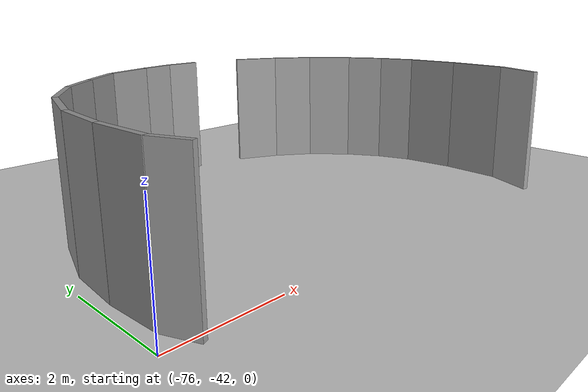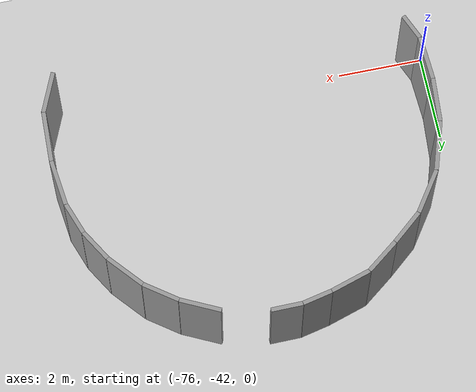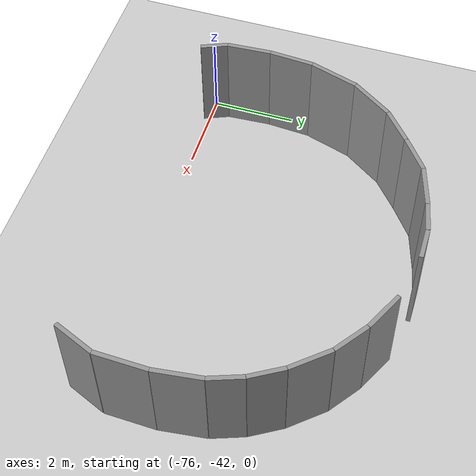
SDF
<sdf version="1.6">
 <world name="default">
  <model name="ground_plane">
   <static>1</static>
   <link name="link">
    <collision name="collision">
     <geometry><plane><normal>0 0 1</normal><size>100 100</size></plane></geometry>
     <surface><friction><ode><mu>100</mu><mu2>50</mu2></ode></friction></surface>
    </collision>
    <visual name="visual">
     <cast_shadows>0</cast_shadows>
     <geometry><plane><normal>0 0 1</normal><size>100 100</size></plane></geometry>
     <material>
      <script><uri>file://media/materials/scripts/gazebo.material</uri><name>Gazebo/Grey</name></script>
     </material>
    </visual>
   </link>
  </model>
  <model name="0510035517_A_40_1_105">
   <static>1</static>
   <link name="Wall_571">
    <collision name="Wall_571_Collision">
     <geometry><box><size>0.650941076857 0.1 2.5</size></box></geometry>
     <pose>0.325470538429 0 1.25 0 0 0</pose>
    </collision>
    <visual name="Wall_571_Visual">
     <pose>0.325470538429 0 1.25 0 0 0</pose>
     <geometry><box><size>0.650941076857 0.1 2.5</size></box></geometry>
     <material>
      <script><uri>file://media/materials/scripts/gazebo.material</uri><name>Gazebo/Grey</name></script>
      <ambient>1 1 1 1</ambient>
     </material>
    </visual>
    <pose>19.1484467827 -105.946131412 0 0 0 1.96979225727</pose>
   </link>
   <link name="Wall_572">
    <collision name="Wall_572_Collision">
     <geometry><box><size>1.05420241658 0.1 2.5</size></box></geometry>
     <pose>0.527101208292 0 1.25 0 0 0</pose>
    </collision>
    <visual name="Wall_572_Visual">
     <pose>0.527101208292 0 1.25 0 0 0</pose>
     <geometry><box><size>1.05420241658 0.1 2.5</size></box></geometry>
     <material>
      <script><uri>file://media/materials/scripts/gazebo.material</uri><name>Gazebo/Grey</name></script>
      <ambient>1 1 1 1</ambient>
     </material>
    </visual>
    <pose>18.8955605116 -105.346320759 0 0 0 1.62386090082</pose>
   </link>
   <link name="Wall_573">
    <collision name="Wall_573_Collision">
     <geometry><box><size>1.05165540302 0.1 2.5</size></box></geometry>
     <pose>0.52582770151 0 1.25 0 0 0</pose>
    </collision>
    <visual name="Wall_573_Visual">
     <pose>0.52582770151 0 1.25 0 0 0</pose>
     <geometry><box><size>1.05165540302 0.1 2.5</size></box></geometry>
     <material>
      <script><uri>file://media/materials/scripts/gazebo.material</uri><name>Gazebo/Grey</name></script>
      <ambient>1 1 1 1</ambient>
     </material>
    </visual>
    <pose>18.8396459592 -104.293602231 0 0 0 1.49847296966</pose>
   </link>
   <link name="Wall_574">
    <collision name="Wall_574_Collision">
     <geometry><box><size>1.19086454302 0.1 2.5</size></box></geometry>
     <pose>0.595432271509 0 1.25 0 0 0</pose>
    </collision>
    <visual name="Wall_574_Visual">
     <pose>0.595432271509 0 1.25 0 0 0</pose>
     <geometry><box><size>1.19086454302 0.1 2.5</size></box></geometry>
     <material>
      <script><uri>file://media/materials/scripts/gazebo.material</uri><name>Gazebo/Grey</name></script>
      <ambient>1 1 1 1</ambient>
     </material>
    </visual>
    <pose>18.9156389191 -103.24469606 0 0 0 1.26915916606</pose>
   </link>
   <link name="Wall_575">
    <collision name="Wall_575_Collision">
     <geometry><box><size>1.10054689304 0.1 2.5</size></box></geometry>
     <pose>0.550273446521 0 1.25 0 0 0</pose>
    </collision>
    <visual name="Wall_575_Visual">
     <pose>0.550273446521 0 1.25 0 0 0</pose>
     <geometry><box><size>1.10054689304 0.1 2.5</size></box></geometry>
     <material>
      <script><uri>file://media/materials/scripts/gazebo.material</uri><name>Gazebo/Grey</name></script>
      <ambient>1 1 1 1</ambient>
     </material>
    </visual>
    <pose>19.2694255415 -102.10759739 0 0 0 0.973314119946</pose>
   </link>
   <link name="Wall_576">
    <collision name="Wall_576_Collision">
     <geometry><box><size>0.878493929623 0.1 2.5</size></box></geometry>
     <pose>0.439246964811 0 1.25 0 0 0</pose>
    </collision>
    <visual name="Wall_576_Visual">
     <pose>0.439246964811 0 1.25 0 0 0</pose>
     <geometry><box><size>0.878493929623 0.1 2.5</size></box></geometry>
     <material>
      <script><uri>file://media/materials/scripts/gazebo.material</uri><name>Gazebo/Grey</name></script>
      <ambient>1 1 1 1</ambient>
     </material>
    </visual>
    <pose>19.8885521308 -101.197715128 0 0 0 0.703887863433</pose>
   </link>
   <link name="Wall_577">
    <collision name="Wall_577_Collision">
     <geometry><box><size>0.892149193453 0.1 2.5</size></box></geometry>
     <pose>0.446074596726 0 1.25 0 0 0</pose>
    </collision>
    <visual name="Wall_577_Visual">
     <pose>0.446074596726 0 1.25 0 0 0</pose>
     <geometry><box><size>0.892149193453 0.1 2.5</size></box></geometry>
     <material>
      <script><uri>file://media/materials/scripts/gazebo.material</uri><name>Gazebo/Grey</name></script>
      <ambient>1 1 1 1</ambient>
     </material>
    </visual>
    <pose>20.5582559743 -100.629165793 0 0 0 0.654896626898</pose>
   </link>
   <link name="Wall_578">
    <collision name="Wall_578_Collision">
     <geometry><box><size>0.967321756479 0.1 2.5</size></box></geometry>
     <pose>0.48366087824 0 1.25 0 0 0</pose>
    </collision>
    <visual name="Wall_578_Visual">
     <pose>0.48366087824 0 1.25 0 0 0</pose>
     <geometry><box><size>0.967321756479 0.1 2.5</size></box></geometry>
     <material>
      <script><uri>file://media/materials/scripts/gazebo.material</uri><name>Gazebo/Grey</name></script>
      <ambient>1 1 1 1</ambient>
     </material>
    </visual>
    <pose>21.2658292192 -100.085778007 0 0 0 0.305298656791</pose>
   </link>
   <link name="Wall_579">
    <collision name="Wall_579_Collision">
     <geometry><box><size>0.698773477854 0.1 2.5</size></box></geometry>
     <pose>0.349386738927 0 1.25 0 0 0</pose>
    </collision>
    <visual name="Wall_579_Visual">
     <pose>0.349386738927 0 1.25 0 0 0</pose>
     <geometry><box><size>0.698773477854 0.1 2.5</size></box></geometry>
     <material>
      <script><uri>file://media/materials/scripts/gazebo.material</uri><name>Gazebo/Grey</name></script>
      <ambient>1 1 1 1</ambient>
     </material>
    </visual>
    <pose>22.1884193337 -99.7950223341 0 0 0 0.218511142498</pose>
   </link>
   <link name="Wall_580">
    <collision name="Wall_580_Collision">
     <geometry><box><size>0.725415709598 0.1 2.5</size></box></geometry>
     <pose>0.362707854799 0 1.25 0 0 0</pose>
    </collision>
    <visual name="Wall_580_Visual">
     <pose>0.362707854799 0 1.25 0 0 0</pose>
     <geometry><box><size>0.725415709598 0.1 2.5</size></box></geometry>
     <material>
      <script><uri>file://media/materials/scripts/gazebo.material</uri><name>Gazebo/Grey</name></script>
      <ambient>1 1 1 1</ambient>
     </material>
    </visual>
    <pose>22.870576873 -99.6435447285 0 0 0 0.0119125408854</pose>
   </link>
   <link name="Wall_582">
    <collision name="Wall_582_Collision">
     <geometry><box><size>0.969274944153 0.1 2.5</size></box></geometry>
     <pose>0.484637472077 0 1.25 0 0 0</pose>
    </collision>
    <visual name="Wall_582_Visual">
     <pose>0.484637472077 0 1.25 0 0 0</pose>
     <geometry><box><size>0.969274944153 0.1 2.5</size></box></geometry>
     <material>
      <script><uri>file://media/materials/scripts/gazebo.material</uri><name>Gazebo/Grey</name></script>
      <ambient>1 1 1 1</ambient>
     </material>
    </visual>
    <pose>24.6593342356 -99.8509368864 0 0 0 -0.451217148069</pose>
   </link>
   <link name="Wall_583">
    <collision name="Wall_583_Collision">
     <geometry><box><size>0.885742738109 0.1 2.5</size></box></geometry>
     <pose>0.442871369054 0 1.25 0 0 0</pose>
    </collision>
    <visual name="Wall_583_Visual">
     <pose>0.442871369054 0 1.25 0 0 0</pose>
     <geometry><box><size>0.885742738109 0.1 2.5</size></box></geometry>
     <material>
      <script><uri>file://media/materials/scripts/gazebo.material</uri><name>Gazebo/Grey</name></script>
      <ambient>1 1 1 1</ambient>
     </material>
    </visual>
    <pose>25.531601253 -100.273600071 0 0 0 -0.624619183645</pose>
   </link>
   <link name="Wall_584">
    <collision name="Wall_584_Collision">
     <geometry><box><size>0.995107708548 0.1 2.5</size></box></geometry>
     <pose>0.497553854274 0 1.25 0 0 0</pose>
    </collision>
    <visual name="Wall_584_Visual">
     <pose>0.497553854274 0 1.25 0 0 0</pose>
     <geometry><box><size>0.995107708548 0.1 2.5</size></box></geometry>
     <material>
      <script><uri>file://media/materials/scripts/gazebo.material</uri><name>Gazebo/Grey</name></script>
      <ambient>1 1 1 1</ambient>
     </material>
    </visual>
    <pose>26.2501032513 -100.791572152 0 0 0 -0.856795698566</pose>
   </link>
   <link name="Wall_585">
    <collision name="Wall_585_Collision">
     <geometry><box><size>0.816705019924 0.1 2.5</size></box></geometry>
     <pose>0.408352509962 0 1.25 0 0 0</pose>
    </collision>
    <visual name="Wall_585_Visual">
     <pose>0.408352509962 0 1.25 0 0 0</pose>
     <geometry><box><size>0.816705019924 0.1 2.5</size></box></geometry>
     <material>
      <script><uri>file://media/materials/scripts/gazebo.material</uri><name>Gazebo/Grey</name></script>
      <ambient>1 1 1 1</ambient>
     </material>
    </visual>
    <pose>26.9017619438 -101.543622882 0 0 0 -1.03373914507</pose>
   </link>
   <link name="Wall_586">
    <collision name="Wall_586_Collision">
     <geometry><box><size>0.782380835673 0.1 2.5</size></box></geometry>
     <pose>0.391190417837 0 1.25 0 0 0</pose>
    </collision>
    <visual name="Wall_586_Visual">
     <pose>0.391190417837 0 1.25 0 0 0</pose>
     <geometry><box><size>0.782380835673 0.1 2.5</size></box></geometry>
     <material>
      <script><uri>file://media/materials/scripts/gazebo.material</uri><name>Gazebo/Grey</name></script>
      <ambient>1 1 1 1</ambient>
     </material>
    </visual>
    <pose>27.3195961444 -102.245350514 0 0 0 -1.22202532321</pose>
   </link>
   <link name="Wall_587">
    <collision name="Wall_587_Collision">
     <geometry><box><size>1.0944627302 0.1 2.5</size></box></geometry>
     <pose>0.547231365098 0 1.25 0 0 0</pose>
    </collision>
    <visual name="Wall_587_Visual">
     <pose>0.547231365098 0 1.25 0 0 0</pose>
     <geometry><box><size>1.0944627302 0.1 2.5</size></box></geometry>
     <material>
      <script><uri>file://media/materials/scripts/gazebo.material</uri><name>Gazebo/Grey</name></script>
      <ambient>1 1 1 1</ambient>
     </material>
    </visual>
    <pose>27.5869693677 -102.980626878 0 0 0 -1.44834236112</pose>
   </link>
   <link name="Wall_588">
    <collision name="Wall_588_Collision">
     <geometry><box><size>1.203640083 0.1 2.5</size></box></geometry>
     <pose>0.601820041498 0 1.25 0 0 0</pose>
    </collision>
    <visual name="Wall_588_Visual">
     <pose>0.601820041498 0 1.25 0 0 0</pose>
     <geometry><box><size>1.203640083 0.1 2.5</size></box></geometry>
     <material>
      <script><uri>file://media/materials/scripts/gazebo.material</uri><name>Gazebo/Grey</name></script>
      <ambient>1 1 1 1</ambient>
     </material>
    </visual>
    <pose>27.7206559794 -104.066894137 0 0 0 -1.59846142559</pose>
   </link>
   <link name="Wall_589">
    <collision name="Wall_589_Collision">
     <geometry><box><size>0.996374530756 0.1 2.5</size></box></geometry>
     <pose>0.498187265378 0 1.25 0 0 0</pose>
    </collision>
    <visual name="Wall_589_Visual">
     <pose>0.498187265378 0 1.25 0 0 0</pose>
     <geometry><box><size>0.996374530756 0.1 2.5</size></box></geometry>
     <material>
      <script><uri>file://media/materials/scripts/gazebo.material</uri><name>Gazebo/Grey</name></script>
      <ambient>1 1 1 1</ambient>
     </material>
    </visual>
    <pose>27.687361405 -105.270073642 0 0 0 -1.96674512591</pose>
   </link>
   <pose>-94.6 63.7835382475 0 0 0 0</pose>
  </model>
 </world>
</sdf>
